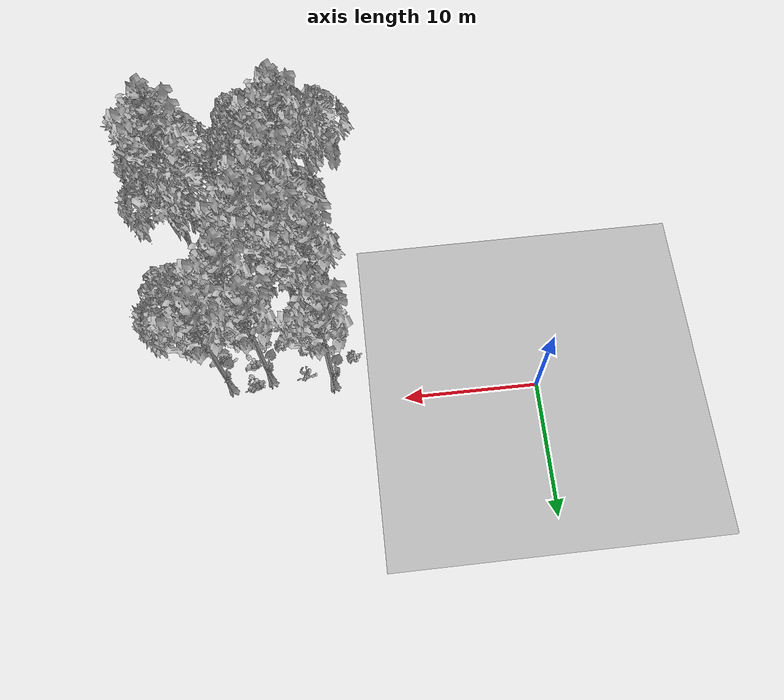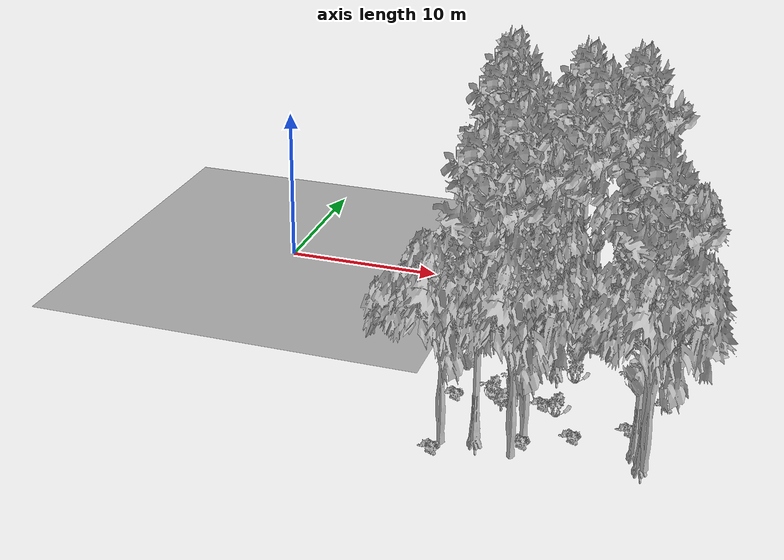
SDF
<sdf version="1.7">
 <world name="default">
  <model name="ground_plane">
   <static>1</static>
   <link name="link">
    <collision name="collision">
     <pose>-50 0 0 0 -0 0</pose>
     <geometry><plane><normal>0 0 1</normal><size>80 80</size></plane></geometry>
     <surface><contact><ode><min_depth>0.01</min_depth><max_vel>0</max_vel></ode></contact></surface>
    </collision>
    <visual name="grass">
     <cast_shadows>0</cast_shadows>
     <geometry>
      <mesh>
       <scale>0.46714285714285714 0.46714285714285714 0.1</scale>
       <uri>file://grass_plane/meshes/grass_plane.dae</uri>
      </mesh>
     </geometry>
    </visual>
   </link>
  </model>
  <model name="Tree 5">
   <static>1</static>
   <pose>22.905808451735147 -2.1207265721238215 0 1.57079 -0 0</pose>
   <link name="link">
    <collision name="collision">
     <geometry><mesh><scale>3.5 5 3.5</scale><uri>model://tree_9/meshes/tree_9.obj</uri></mesh></geometry>
    </collision>
    <visual name="visual">
     <geometry><mesh><scale>3.5 5 3.5</scale><uri>model://tree_9/meshes/tree_9.obj</uri></mesh></geometry>
    </visual>
   </link>
  </model>
  <model name="Tree 42">
   <static>1</static>
   <pose>19.89698114983001 -2.444759808052204 0 1.57079 -0 0</pose>
   <link name="link">
    <collision name="collision">
     <geometry><mesh><scale>3.5 5 3.5</scale><uri>model://tree_9/meshes/tree_9.obj</uri></mesh></geometry>
    </collision>
    <visual name="visual">
     <geometry><mesh><scale>3.5 5 3.5</scale><uri>model://tree_9/meshes/tree_9.obj</uri></mesh></geometry>
    </visual>
   </link>
  </model>
  <model name="Tree 45">
   <static>1</static>
   <pose>18.04943216112354 -12.725624291775421 0 1.57079 -0 0</pose>
   <link name="link">
    <collision name="collision">
     <geometry><mesh><scale>3.5 5 3.5</scale><uri>model://tree_2/meshes/tree_2.obj</uri></mesh></geometry>
    </collision>
    <visual name="visual">
     <geometry><mesh><scale>3.5 5 3.5</scale><uri>model://tree_2/meshes/tree_2.obj</uri></mesh></geometry>
    </visual>
   </link>
  </model>
  <model name="Tree 83">
   <static>1</static>
   <pose>25.85359050906996 -14.72516256209417 0 1.57079 -0 0</pose>
   <link name="link">
    <collision name="collision">
     <geometry><mesh><scale>3.5 5 3.5</scale><uri>model://tree_2/meshes/tree_2.obj</uri></mesh></geometry>
    </collision>
    <visual name="visual">
     <geometry><mesh><scale>3.5 5 3.5</scale><uri>model://tree_2/meshes/tree_2.obj</uri></mesh></geometry>
    </visual>
   </link>
  </model>
  <model name="Tree 98">
   <static>1</static>
   <pose>15.794811663156658 -19.087704341037444 0 1.57079 -0 0</pose>
   <link name="link">
    <collision name="collision">
     <geometry><mesh><scale>3.5 5 3.5</scale><uri>model://tree_2/meshes/tree_2.obj</uri></mesh></geometry>
    </collision>
    <visual name="visual">
     <geometry><mesh><scale>3.5 5 3.5</scale><uri>model://tree_2/meshes/tree_2.obj</uri></mesh></geometry>
    </visual>
   </link>
  </model>
  <model name="Tree 148">
   <static>1</static>
   <pose>19.54025968695335 -19.186060991486684 0 1.57079 -0 0</pose>
   <link name="link">
    <collision name="collision">
     <geometry><mesh><scale>3.5 5 3.5</scale><uri>model://tree_2/meshes/tree_2.obj</uri></mesh></geometry>
    </collision>
    <visual name="visual">
     <geometry><mesh><scale>3.5 5 3.5</scale><uri>model://tree_2/meshes/tree_2.obj</uri></mesh></geometry>
    </visual>
   </link>
  </model>
  <model name="Tree 175">
   <static>1</static>
   <pose>15.203911889292165 -1.566162496072394 0 1.57079 -0 0</pose>
   <link name="link">
    <collision name="collision">
     <geometry><mesh><scale>3.5 5 3.5</scale><uri>model://tree_9/meshes/tree_9.obj</uri></mesh></geometry>
    </collision>
    <visual name="visual">
     <geometry><mesh><scale>3.5 5 3.5</scale><uri>model://tree_9/meshes/tree_9.obj</uri></mesh></geometry>
    </visual>
   </link>
  </model>
  <model name="Tree 197">
   <static>1</static>
   <pose>25.580048169926414 -16.565532331632546 0 1.57079 -0 0</pose>
   <link name="link">
    <collision name="collision">
     <geometry><mesh><scale>3.5 5 3.5</scale><uri>model://tree_9/meshes/tree_9.obj</uri></mesh></geometry>
    </collision>
    <visual name="visual">
     <geometry><mesh><scale>3.5 5 3.5</scale><uri>model://tree_9/meshes/tree_9.obj</uri></mesh></geometry>
    </visual>
   </link>
  </model>
  <model name="Tree 218">
   <static>1</static>
   <pose>24.65433007871094 -5.511962261864369 0 1.57079 -0 0</pose>
   <link name="link">
    <collision name="collision">
     <geometry><mesh><scale>3.5 5 3.5</scale><uri>model://tree_2/meshes/tree_2.obj</uri></mesh></geometry>
    </collision>
    <visual name="visual">
     <geometry><mesh><scale>3.5 5 3.5</scale><uri>model://tree_2/meshes/tree_2.obj</uri></mesh></geometry>
    </visual>
   </link>
  </model>
  <model name="Tree 223">
   <static>1</static>
   <pose>17.346517323609575 -8.450835618500328 0 1.57079 -0 0</pose>
   <link name="link">
    <collision name="collision">
     <geometry><mesh><scale>3.5 5 3.5</scale><uri>model://tree_2/meshes/tree_2.obj</uri></mesh></geometry>
    </collision>
    <visual name="visual">
     <geometry><mesh><scale>3.5 5 3.5</scale><uri>model://tree_2/meshes/tree_2.obj</uri></mesh></geometry>
    </visual>
   </link>
  </model>
  <model name="Tree 233">
   <static>1</static>
   <pose>18.75867257355602 -13.103658360951556 0 1.57079 -0 0</pose>
   <link name="link">
    <collision name="collision">
     <geometry><mesh><scale>3.5 5 3.5</scale><uri>model://tree_2/meshes/tree_2.obj</uri></mesh></geometry>
    </collision>
    <visual name="visual">
     <geometry><mesh><scale>3.5 5 3.5</scale><uri>model://tree_2/meshes/tree_2.obj</uri></mesh></geometry>
    </visual>
   </link>
  </model>
  <model name="Tree 258">
   <static>1</static>
   <pose>19.770293271140055 -17.204904201715507 0 1.57079 -0 0</pose>
   <link name="link">
    <collision name="collision">
     <geometry><mesh><scale>3.5 5 3.5</scale><uri>model://tree_2/meshes/tree_2.obj</uri></mesh></geometry>
    </collision>
    <visual name="visual">
     <geometry><mesh><scale>3.5 5 3.5</scale><uri>model://tree_2/meshes/tree_2.obj</uri></mesh></geometry>
    </visual>
   </link>
  </model>
  <model name="Tree 266">
   <static>1</static>
   <pose>15.755741962522428 -7.276455980119003 0 1.57079 -0 0</pose>
   <link name="link">
    <collision name="collision">
     <geometry><mesh><scale>3.5 5 3.5</scale><uri>model://tree_9/meshes/tree_9.obj</uri></mesh></geometry>
    </collision>
    <visual name="visual">
     <geometry><mesh><scale>3.5 5 3.5</scale><uri>model://tree_9/meshes/tree_9.obj</uri></mesh></geometry>
    </visual>
   </link>
  </model>
  <model name="Tree 270">
   <static>1</static>
   <pose>17.85205206911165 -8.55332195113407 0 1.57079 -0 0</pose>
   <link name="link">
    <collision name="collision">
     <geometry><mesh><scale>3.5 5 3.5</scale><uri>model://tree_9/meshes/tree_9.obj</uri></mesh></geometry>
    </collision>
    <visual name="visual">
     <geometry><mesh><scale>3.5 5 3.5</scale><uri>model://tree_9/meshes/tree_9.obj</uri></mesh></geometry>
    </visual>
   </link>
  </model>
  <model name="Tree 318">
   <static>1</static>
   <pose>21.31584484037156 -5.838874062997455 0 1.57079 -0 0</pose>
   <link name="link">
    <collision name="collision">
     <geometry><mesh><scale>3.5 5 3.5</scale><uri>model://tree_9/meshes/tree_9.obj</uri></mesh></geometry>
    </collision>
    <visual name="visual">
     <geometry><mesh><scale>3.5 5 3.5</scale><uri>model://tree_9/meshes/tree_9.obj</uri></mesh></geometry>
    </visual>
   </link>
  </model>
  <model name="Tree 415">
   <static>1</static>
   <pose>26.195668084923682 -18.22262946452185 0 1.57079 -0 0</pose>
   <link name="link">
    <collision name="collision">
     <geometry><mesh><scale>3.5 5 3.5</scale><uri>model://tree_2/meshes/tree_2.obj</uri></mesh></geometry>
    </collision>
    <visual name="visual">
     <geometry><mesh><scale>3.5 5 3.5</scale><uri>model://tree_2/meshes/tree_2.obj</uri></mesh></geometry>
    </visual>
   </link>
  </model>
  <model name="Tree 462">
   <static>1</static>
   <pose>17.438849298225165 -18.027846235897968 0 1.57079 -0 0</pose>
   <link name="link">
    <collision name="collision">
     <geometry><mesh><scale>3.5 5 3.5</scale><uri>model://tree_9/meshes/tree_9.obj</uri></mesh></geometry>
    </collision>
    <visual name="visual">
     <geometry><mesh><scale>3.5 5 3.5</scale><uri>model://tree_9/meshes/tree_9.obj</uri></mesh></geometry>
    </visual>
   </link>
  </model>
  <model name="Tree 505">
   <static>1</static>
   <pose>20.10688219763061 -9.917915904973789 0 1.57079 -0 0</pose>
   <link name="link">
    <collision name="collision">
     <geometry><mesh><scale>3.5 5 3.5</scale><uri>model://tree_9/meshes/tree_9.obj</uri></mesh></geometry>
    </collision>
    <visual name="visual">
     <geometry><mesh><scale>3.5 5 3.5</scale><uri>model://tree_9/meshes/tree_9.obj</uri></mesh></geometry>
    </visual>
   </link>
  </model>
  <model name="Tree 570">
   <static>1</static>
   <pose>18.27781413555777 -13.27435417072655 0 1.57079 -0 0</pose>
   <link name="link">
    <collision name="collision">
     <geometry><mesh><scale>3.5 5 3.5</scale><uri>model://tree_9/meshes/tree_9.obj</uri></mesh></geometry>
    </collision>
    <visual name="visual">
     <geometry><mesh><scale>3.5 5 3.5</scale><uri>model://tree_9/meshes/tree_9.obj</uri></mesh></geometry>
    </visual>
   </link>
  </model>
  <model name="Tree 574">
   <static>1</static>
   <pose>26.03354847708688 -17.786585923972993 0 1.57079 -0 0</pose>
   <link name="link">
    <collision name="collision">
     <geometry><mesh><scale>3.5 5 3.5</scale><uri>model://tree_9/meshes/tree_9.obj</uri></mesh></geometry>
    </collision>
    <visual name="visual">
     <geometry><mesh><scale>3.5 5 3.5</scale><uri>model://tree_9/meshes/tree_9.obj</uri></mesh></geometry>
    </visual>
   </link>
  </model>
  <model name="Bush 9">
   <static>1</static>
   <pose>21.613034788151936 -6.58667724824155 0 1.57079 -0 0</pose>
   <link name="link">
    <collision name="collision">
     <geometry><mesh><scale>2 2 2</scale><uri>model://bush_2/meshes/bush_2.obj</uri></mesh></geometry>
     <surface><contact><collide_without_contact>false</collide_without_contact></contact></surface>
    </collision>
    <visual name="visual">
     <geometry><mesh><scale>2 2 2</scale><uri>model://bush_2/meshes/bush_2.obj</uri></mesh></geometry>
    </visual>
   </link>
  </model>
  <model name="Bush 69">
   <static>1</static>
   <pose>19.101779605540393 -5.313722726058224 0 1.57079 -0 0</pose>
   <link name="link">
    <collision name="collision">
     <geometry><mesh><scale>2 2 2</scale><uri>model://bush_2/meshes/bush_2.obj</uri></mesh></geometry>
     <surface><contact><collide_without_contact>false</collide_without_contact></contact></surface>
    </collision>
    <visual name="visual">
     <geometry><mesh><scale>2 2 2</scale><uri>model://bush_2/meshes/bush_2.obj</uri></mesh></geometry>
    </visual>
   </link>
  </model>
  <model name="Bush 75">
   <static>1</static>
   <pose>19.787227652666964 -17.795011130258345 0 1.57079 -0 0</pose>
   <link name="link">
    <collision name="collision">
     <geometry><mesh><scale>2 2 2</scale><uri>model://bush_2/meshes/bush_2.obj</uri></mesh></geometry>
     <surface><contact><collide_without_contact>false</collide_without_contact></contact></surface>
    </collision>
    <visual name="visual">
     <geometry><mesh><scale>2 2 2</scale><uri>model://bush_2/meshes/bush_2.obj</uri></mesh></geometry>
    </visual>
   </link>
  </model>
  <model name="Bush 153">
   <static>1</static>
   <pose>24.46459896313239 -10.288623234302676 0 1.57079 -0 0</pose>
   <link name="link">
    <collision name="collision">
     <geometry><mesh><scale>2 2 2</scale><uri>model://bush_4/meshes/bush_4.obj</uri></mesh></geometry>
     <surface><contact><collide_without_contact>false</collide_without_contact></contact></surface>
    </collision>
    <visual name="visual">
     <geometry><mesh><scale>2 2 2</scale><uri>model://bush_4/meshes/bush_4.obj</uri></mesh></geometry>
    </visual>
   </link>
  </model>
  <model name="Bush 162">
   <static>1</static>
   <pose>18.03127491458089 -10.718485702302978 0 1.57079 -0 0</pose>
   <link name="link">
    <collision name="collision">
     <geometry><mesh><scale>2 2 2</scale><uri>model://bush_2/meshes/bush_2.obj</uri></mesh></geometry>
     <surface><contact><collide_without_contact>false</collide_without_contact></contact></surface>
    </collision>
    <visual name="visual">
     <geometry><mesh><scale>2 2 2</scale><uri>model://bush_2/meshes/bush_2.obj</uri></mesh></geometry>
    </visual>
   </link>
  </model>
  <model name="Bush 245">
   <static>1</static>
   <pose>17.218643749958233 -2.514851485472633 0 1.57079 -0 0</pose>
   <link name="link">
    <collision name="collision">
     <geometry><mesh><scale>2 2 2</scale><uri>model://bush_4/meshes/bush_4.obj</uri></mesh></geometry>
     <surface><contact><collide_without_contact>false</collide_without_contact></contact></surface>
    </collision>
    <visual name="visual">
     <geometry><mesh><scale>2 2 2</scale><uri>model://bush_4/meshes/bush_4.obj</uri></mesh></geometry>
    </visual>
   </link>
  </model>
  <model name="Bush 246">
   <static>1</static>
   <pose>15.470897805932715 -19.73966883374655 0 1.57079 -0 0</pose>
   <link name="link">
    <collision name="collision">
     <geometry><mesh><scale>2 2 2</scale><uri>model://bush_2/meshes/bush_2.obj</uri></mesh></geometry>
     <surface><contact><collide_without_contact>false</collide_without_contact></contact></surface>
    </collision>
    <visual name="visual">
     <geometry><mesh><scale>2 2 2</scale><uri>model://bush_2/meshes/bush_2.obj</uri></mesh></geometry>
    </visual>
   </link>
  </model>
  <model name="Bush 308">
   <static>1</static>
   <pose>15.225159725069766 -14.210096302035247 0 1.57079 -0 0</pose>
   <link name="link">
    <collision name="collision">
     <geometry><mesh><scale>2 2 2</scale><uri>model://bush_2/meshes/bush_2.obj</uri></mesh></geometry>
     <surface><contact><collide_without_contact>false</collide_without_contact></contact></surface>
    </collision>
    <visual name="visual">
     <geometry><mesh><scale>2 2 2</scale><uri>model://bush_2/meshes/bush_2.obj</uri></mesh></geometry>
    </visual>
   </link>
  </model>
  <model name="Bush 316">
   <static>1</static>
   <pose>21.001933764200594 -14.605125012243654 0 1.57079 -0 0</pose>
   <link name="link">
    <collision name="collision">
     <geometry><mesh><scale>2 2 2</scale><uri>model://bush_4/meshes/bush_4.obj</uri></mesh></geometry>
     <surface><contact><collide_without_contact>false</collide_without_contact></contact></surface>
    </collision>
    <visual name="visual">
     <geometry><mesh><scale>2 2 2</scale><uri>model://bush_4/meshes/bush_4.obj</uri></mesh></geometry>
    </visual>
   </link>
  </model>
  <model name="Bush 329">
   <static>1</static>
   <pose>18.251850350809754 -12.607906235536987 0 1.57079 -0 0</pose>
   <link name="link">
    <collision name="collision">
     <geometry><mesh><scale>2 2 2</scale><uri>model://bush_4/meshes/bush_4.obj</uri></mesh></geometry>
     <surface><contact><collide_without_contact>false</collide_without_contact></contact></surface>
    </collision>
    <visual name="visual">
     <geometry><mesh><scale>2 2 2</scale><uri>model://bush_4/meshes/bush_4.obj</uri></mesh></geometry>
    </visual>
   </link>
  </model>
  <model name="Bush 337">
   <static>1</static>
   <pose>21.025260483619896 -9.647164912820756 0 1.57079 -0 0</pose>
   <link name="link">
    <collision name="collision">
     <geometry><mesh><scale>2 2 2</scale><uri>model://bush_5/meshes/bush_5.obj</uri></mesh></geometry>
     <surface><contact><collide_without_contact>false</collide_without_contact></contact></surface>
    </collision>
    <visual name="visual">
     <geometry><mesh><scale>2 2 2</scale><uri>model://bush_5/meshes/bush_5.obj</uri></mesh></geometry>
    </visual>
   </link>
  </model>
  <model name="Bush 350">
   <static>1</static>
   <pose>20.050939206041278 -13.775889339758123 0 1.57079 -0 0</pose>
   <link name="link">
    <collision name="collision">
     <geometry><mesh><scale>2 2 2</scale><uri>model://bush_2/meshes/bush_2.obj</uri></mesh></geometry>
     <surface><contact><collide_without_contact>false</collide_without_contact></contact></surface>
    </collision>
    <visual name="visual">
     <geometry><mesh><scale>2 2 2</scale><uri>model://bush_2/meshes/bush_2.obj</uri></mesh></geometry>
    </visual>
   </link>
  </model>
  <model name="Bush 356">
   <static>1</static>
   <pose>21.317570839294504 -10.769645524743154 0 1.57079 -0 0</pose>
   <link name="link">
    <collision name="collision">
     <geometry><mesh><scale>2 2 2</scale><uri>model://bush_4/meshes/bush_4.obj</uri></mesh></geometry>
     <surface><contact><collide_without_contact>false</collide_without_contact></contact></surface>
    </collision>
    <visual name="visual">
     <geometry><mesh><scale>2 2 2</scale><uri>model://bush_4/meshes/bush_4.obj</uri></mesh></geometry>
    </visual>
   </link>
  </model>
  <model name="Bush 367">
   <static>1</static>
   <pose>18.10011370010193 -15.013051650266974 0 1.57079 -0 0</pose>
   <link name="link">
    <collision name="collision">
     <geometry><mesh><scale>2 2 2</scale><uri>model://bush_0/meshes/bush_0.obj</uri></mesh></geometry>
     <surface><contact><collide_without_contact>false</collide_without_contact></contact></surface>
    </collision>
    <visual name="visual">
     <geometry><mesh><scale>2 2 2</scale><uri>model://bush_0/meshes/bush_0.obj</uri></mesh></geometry>
    </visual>
   </link>
  </model>
  <model name="Bush 397">
   <static>1</static>
   <pose>23.13984919827729 -4.378147679890503 0 1.57079 -0 0</pose>
   <link name="link">
    <collision name="collision">
     <geometry><mesh><scale>2 2 2</scale><uri>model://bush_4/meshes/bush_4.obj</uri></mesh></geometry>
     <surface><contact><collide_without_contact>false</collide_without_contact></contact></surface>
    </collision>
    <visual name="visual">
     <geometry><mesh><scale>2 2 2</scale><uri>model://bush_4/meshes/bush_4.obj</uri></mesh></geometry>
    </visual>
   </link>
  </model>
  <model name="Bush 416">
   <static>1</static>
   <pose>21.298256397032638 -3.6296140206456897 0 1.57079 -0 0</pose>
   <link name="link">
    <collision name="collision">
     <geometry><mesh><scale>2 2 2</scale><uri>model://bush_0/meshes/bush_0.obj</uri></mesh></geometry>
     <surface><contact><collide_without_contact>false</collide_without_contact></contact></surface>
    </collision>
    <visual name="visual">
     <geometry><mesh><scale>2 2 2</scale><uri>model://bush_0/meshes/bush_0.obj</uri></mesh></geometry>
    </visual>
   </link>
  </model>
  <model name="Bush 424">
   <static>1</static>
   <pose>24.945603645657258 -14.883198175180947 0 1.57079 -0 0</pose>
   <link name="link">
    <collision name="collision">
     <geometry><mesh><scale>2 2 2</scale><uri>model://bush_2/meshes/bush_2.obj</uri></mesh></geometry>
     <surface><contact><collide_without_contact>false</collide_without_contact></contact></surface>
    </collision>
    <visual name="visual">
     <geometry><mesh><scale>2 2 2</scale><uri>model://bush_2/meshes/bush_2.obj</uri></mesh></geometry>
    </visual>
   </link>
  </model>
  <model name="Bush 430">
   <static>1</static>
   <pose>21.137561605202478 -2.0127551596464457 0 1.57079 -0 0</pose>
   <link name="link">
    <collision name="collision">
     <geometry><mesh><scale>2 2 2</scale><uri>model://bush_0/meshes/bush_0.obj</uri></mesh></geometry>
     <surface><contact><collide_without_contact>false</collide_without_contact></contact></surface>
    </collision>
    <visual name="visual">
     <geometry><mesh><scale>2 2 2</scale><uri>model://bush_0/meshes/bush_0.obj</uri></mesh></geometry>
    </visual>
   </link>
  </model>
  <model name="Bush 516">
   <static>1</static>
   <pose>13.603365286724468 -3.776695616129203 0 1.57079 -0 0</pose>
   <link name="link">
    <collision name="collision">
     <geometry><mesh><scale>2 2 2</scale><uri>model://bush_2/meshes/bush_2.obj</uri></mesh></geometry>
     <surface><contact><collide_without_contact>false</collide_without_contact></contact></surface>
    </collision>
    <visual name="visual">
     <geometry><mesh><scale>2 2 2</scale><uri>model://bush_2/meshes/bush_2.obj</uri></mesh></geometry>
    </visual>
   </link>
  </model>
  <model name="Bush 522">
   <static>1</static>
   <pose>26.459040202568957 -11.70931393550503 0 1.57079 -0 0</pose>
   <link name="link">
    <collision name="collision">
     <geometry><mesh><scale>2 2 2</scale><uri>model://bush_2/meshes/bush_2.obj</uri></mesh></geometry>
     <surface><contact><collide_without_contact>false</collide_without_contact></contact></surface>
    </collision>
    <visual name="visual">
     <geometry><mesh><scale>2 2 2</scale><uri>model://bush_2/meshes/bush_2.obj</uri></mesh></geometry>
    </visual>
   </link>
  </model>
  <model name="Bush 550">
   <static>1</static>
   <pose>17.209801504109905 -4.250137322066905 0 1.57079 -0 0</pose>
   <link name="link">
    <collision name="collision">
     <geometry><mesh><scale>2 2 2</scale><uri>model://bush_5/meshes/bush_5.obj</uri></mesh></geometry>
     <surface><contact><collide_without_contact>false</collide_without_contact></contact></surface>
    </collision>
    <visual name="visual">
     <geometry><mesh><scale>2 2 2</scale><uri>model://bush_5/meshes/bush_5.obj</uri></mesh></geometry>
    </visual>
   </link>
  </model>
  <model name="Bush 552">
   <static>1</static>
   <pose>21.15066521923937 -2.002853998307046 0 1.57079 -0 0</pose>
   <link name="link">
    <collision name="collision">
     <geometry><mesh><scale>2 2 2</scale><uri>model://bush_4/meshes/bush_4.obj</uri></mesh></geometry>
     <surface><contact><collide_without_contact>false</collide_without_contact></contact></surface>
    </collision>
    <visual name="visual">
     <geometry><mesh><scale>2 2 2</scale><uri>model://bush_4/meshes/bush_4.obj</uri></mesh></geometry>
    </visual>
   </link>
  </model>
  <model name="Bush 554">
   <static>1</static>
   <pose>17.347041815315293 -13.964204798769053 0 1.57079 -0 0</pose>
   <link name="link">
    <collision name="collision">
     <geometry><mesh><scale>2 2 2</scale><uri>model://bush_4/meshes/bush_4.obj</uri></mesh></geometry>
     <surface><contact><collide_without_contact>false</collide_without_contact></contact></surface>
    </collision>
    <visual name="visual">
     <geometry><mesh><scale>2 2 2</scale><uri>model://bush_4/meshes/bush_4.obj</uri></mesh></geometry>
    </visual>
   </link>
  </model>
  <model name="Bush 585">
   <static>1</static>
   <pose>22.211360309394856 -16.461576729585392 0 1.57079 -0 0</pose>
   <link name="link">
    <collision name="collision">
     <geometry><mesh><scale>2 2 2</scale><uri>model://bush_2/meshes/bush_2.obj</uri></mesh></geometry>
     <surface><contact><collide_without_contact>false</collide_without_contact></contact></surface>
    </collision>
    <visual name="visual">
     <geometry><mesh><scale>2 2 2</scale><uri>model://bush_2/meshes/bush_2.obj</uri></mesh></geometry>
    </visual>
   </link>
  </model>
  <model name="Bush 605">
   <static>1</static>
   <pose>23.963998447713017 -4.230857767511168 0 1.57079 -0 0</pose>
   <link name="link">
    <collision name="collision">
     <geometry><mesh><scale>2 2 2</scale><uri>model://bush_0/meshes/bush_0.obj</uri></mesh></geometry>
     <surface><contact><collide_without_contact>false</collide_without_contact></contact></surface>
    </collision>
    <visual name="visual">
     <geometry><mesh><scale>2 2 2</scale><uri>model://bush_0/meshes/bush_0.obj</uri></mesh></geometry>
    </visual>
   </link>
  </model>
 </world>
</sdf>
